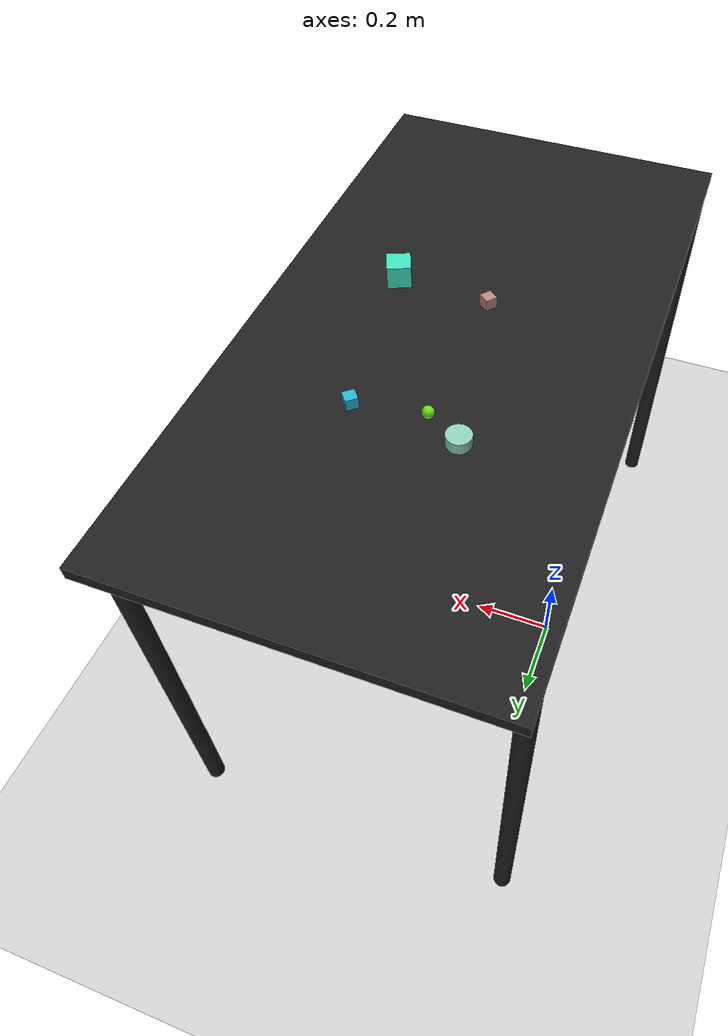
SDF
<?xml version="1.0" ?>
<sdf version="1.6">
  <world name="arm_world">
    <plugin filename="gz-sim-physics-system" name="gz::sim::systems::Physics">
      <engine>
        <filename>libgz-physics-bullet-featherstone-plugin.so</filename>
      </engine>
    </plugin>
    <plugin filename="gz-sim-user-commands-system" name="gz::sim::systems::UserCommands"/>
    <plugin filename="gz-sim-scene-broadcaster-system" name="gz::sim::systems::SceneBroadcaster"/>
    <plugin filename="gz-sim-sensors-system" name="gz::sim::systems::Sensors">
      <render_engine>ogre2</render_engine>
    </plugin>
    <gravity>0.0 0.0 -9.8</gravity>
    <scene>
      <shadows>false</shadows>
    </scene>
    <gui>
      <camera name="user_camera">
        <pose>0.75 -0.75 1.4 0 0.29 2.21</pose>
      </camera>
    </gui>
    <include>
      <uri>https://fuel.gazebosim.org/1.0/OpenRobotics/models/Sun</uri>
    </include>
    <model name="table">
      <static>true</static>
      <include>
        <uri>model://table</uri>
      </include>
      <pose>0.29 0 0 0 0 1.5708</pose>
    </model>
    <model name="ground_plane">
      <static>true</static>
      <link name="link">
        <collision name="collision">
          <geometry>
            <plane>
              <normal>0 0 1</normal>
            </plane>
          </geometry>
          <surface>
            <friction>
              <ode>
                <mu>1.0</mu>
                <mu2>1.0</mu2>
              </ode>
            </friction>
          </surface>
        </collision>
        <visual name="visual">
          <geometry>
            <plane>
              <normal>0 0 1</normal>
              <size>100 100</size>
            </plane>
          </geometry>
          <material>
            <ambient>0.8 0.8 0.8 1</ambient>
            <diffuse>0.8 0.8 0.8 1</diffuse>
            <specular>0.8 0.8 0.8 1</specular>
          </material>
        </visual>
      </link>
    </model>
    <model name="sphere_s_0">
      <pose>0.239 0.252 1.05 0 0 4.62</pose>
      <link name="sphere_s_0_link">
        <collision name="sphere_s_0_collision">
          <geometry>
            <sphere>
              <radius>0.0125</radius>
            </sphere>
          </geometry>
        </collision>
        <visual name="sphere_s_0_visual">
          <geometry>
            <sphere>
              <radius>0.0125</radius>
            </sphere>
          </geometry>
          <material>
            <ambient>0.43 0.86 0.13 1</ambient>
            <diffuse>0.43 0.86 0.13 1</diffuse>
          </material>
        </visual>
        <velocity_decay>
          <linear>1</linear>
          <angular>1</angular>
        </velocity_decay>
      </link>
    </model>
    <model name="cube_s_1">
      <pose>0.235 -0.078 1.05 0 0 0.89</pose>
      <link name="cube_s_1_link">
        <collision name="cube_s_1_collision">
          <geometry>
            <box>
              <size>0.025 0.025 0.025</size>
            </box>
          </geometry>
        </collision>
        <visual name="cube_s_1_visual">
          <geometry>
            <box>
              <size>0.025 0.025 0.025</size>
            </box>
          </geometry>
          <material>
            <ambient>0.73 0.51 0.48 1</ambient>
            <diffuse>0.73 0.51 0.48 1</diffuse>
          </material>
        </visual>
        <velocity_decay>
          <linear>1</linear>
          <angular>1</angular>
        </velocity_decay>
      </link>
    </model>
    <model name="cube_s_2">
      <pose>0.384 0.272 1.05 0 0 5.41</pose>
      <link name="cube_s_2_link">
        <collision name="cube_s_2_collision">
          <geometry>
            <box>
              <size>0.025 0.025 0.025</size>
            </box>
          </geometry>
        </collision>
        <visual name="cube_s_2_visual">
          <geometry>
            <box>
              <size>0.025 0.025 0.025</size>
            </box>
          </geometry>
          <material>
            <ambient>0.16 0.69 0.82 1</ambient>
            <diffuse>0.16 0.69 0.82 1</diffuse>
          </material>
        </visual>
        <velocity_decay>
          <linear>1</linear>
          <angular>1</angular>
        </velocity_decay>
      </link>
    </model>
    <model name="cube_m_3">
      <pose>0.441 -0.106 1.05 0 0 0.4</pose>
      <link name="cube_m_3_link">
        <collision name="cube_m_3_collision">
          <geometry>
            <box>
              <size>0.05 0.05 0.05</size>
            </box>
          </geometry>
        </collision>
        <visual name="cube_m_3_visual">
          <geometry>
            <box>
              <size>0.05 0.05 0.05</size>
            </box>
          </geometry>
          <material>
            <ambient>0.24 0.86 0.73 1</ambient>
            <diffuse>0.24 0.86 0.73 1</diffuse>
          </material>
        </visual>
        <velocity_decay>
          <linear>1</linear>
          <angular>1</angular>
        </velocity_decay>
      </link>
    </model>
    <model name="cylinder_m_4">
      <pose>0.165 0.294 1.05 0 0 3.84</pose>
      <link name="cylinder_m_4_link">
        <collision name="cylinder_m_4_collision">
          <geometry>
            <cylinder>
              <radius>0.025</radius>
              <length>0.025</length>
            </cylinder>
          </geometry>
        </collision>
        <visual name="cylinder_m_4_visual">
          <geometry>
            <cylinder>
              <radius>0.025</radius>
              <length>0.025</length>
            </cylinder>
          </geometry>
          <material>
            <ambient>0.55 0.79 0.71 1</ambient>
            <diffuse>0.55 0.79 0.71 1</diffuse>
          </material>
        </visual>
        <velocity_decay>
          <linear>1</linear>
          <angular>1</angular>
        </velocity_decay>
      </link>
    </model>
  </world>
</sdf>

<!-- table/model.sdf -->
<sdf version="1.5">
  <model name="table">
    <static>true</static>
    <link name="link">
      <collision name="surface">
        <pose>0 0 1.0 0 0 0</pose>
        <geometry>
          <box>
            <size>1.5 0.8 0.03</size>
          </box>
        </geometry>
        <surface>
          <friction>
            <ode>
              <mu>0.6</mu>
              <mu2>0.6</mu2>
            </ode>
          </friction>
        </surface>
      </collision>
      <visual name="surface">
        <pose>0 0 1.0 0 0 0</pose>
        <geometry>
          <box>
            <size>1.5 0.8 0.03</size>
          </box>
        </geometry>
        <material>
          <script>
            <uri>file://media/materials/scripts/gazebo.material</uri>
            <name>Gazebo/Black</name>
          </script>
        </material>
      </visual>
      <collision name="front_left_leg">
        <pose>0.68 0.38 0.5 0 0 0</pose>
        <geometry>
          <cylinder>
            <radius>0.02</radius>
            <length>1.0</length>
          </cylinder>
        </geometry>
      </collision>
      <visual name="front_left_leg">
        <pose>0.68 0.38 0.5 0 0 0</pose>
        <geometry>
          <cylinder>
            <radius>0.02</radius>
            <length>1.0</length>
          </cylinder>
        </geometry>
        <material>
          <script>
            <uri>file://media/materials/scripts/gazebo.material</uri>
            <name>Gazebo/Black</name>
          </script>
        </material>
      </visual>
      <collision name="front_right_leg">
        <pose>0.68 -0.38 0.5 0 0 0</pose>
        <geometry>
          <cylinder>
            <radius>0.02</radius>
            <length>1.0</length>
          </cylinder>
        </geometry>
      </collision>
      <visual name="front_right_leg">
        <pose>0.68 -0.38 0.5 0 0 0</pose>
        <geometry>
          <cylinder>
            <radius>0.02</radius>
            <length>1.0</length>
          </cylinder>
        </geometry>
        <material>
          <script>
            <uri>file://media/materials/scripts/gazebo.material</uri>
            <name>Gazebo/Black</name>
          </script>
        </material>
      </visual>
      <collision name="back_right_leg">
        <pose>-0.68 -0.38 0.5 0 0 0</pose>
        <geometry>
          <cylinder>
            <radius>0.02</radius>
            <length>1.0</length>
          </cylinder>
        </geometry>
      </collision>
      <visual name="back_right_leg">
        <pose>-0.68 -0.38 0.5 0 0 0</pose>
        <geometry>
          <cylinder>
            <radius>0.02</radius>
            <length>1.0</length>
          </cylinder>
        </geometry>
        <material>
          <script>
            <uri>file://media/materials/scripts/gazebo.material</uri>
            <name>Gazebo/Black</name>
          </script>
        </material>
      </visual>
      <collision name="back_left_leg">
        <pose>-0.68 0.38 0.5 0 0 0</pose>
        <geometry>
          <cylinder>
            <radius>0.02</radius>
            <length>1.0</length>
          </cylinder>
        </geometry>
      </collision>
      <visual name="back_left_leg">
        <pose>-0.68 0.38 0.5 0 0 0</pose>
        <geometry>
          <cylinder>
            <radius>0.02</radius>
            <length>1.0</length>
          </cylinder>
        </geometry>
        <material>
          <script>
            <uri>file://media/materials/scripts/gazebo.material</uri>
            <name>Gazebo/Black</name>
          </script>
        </material>
      </visual>
    </link>
  </model>
</sdf>
